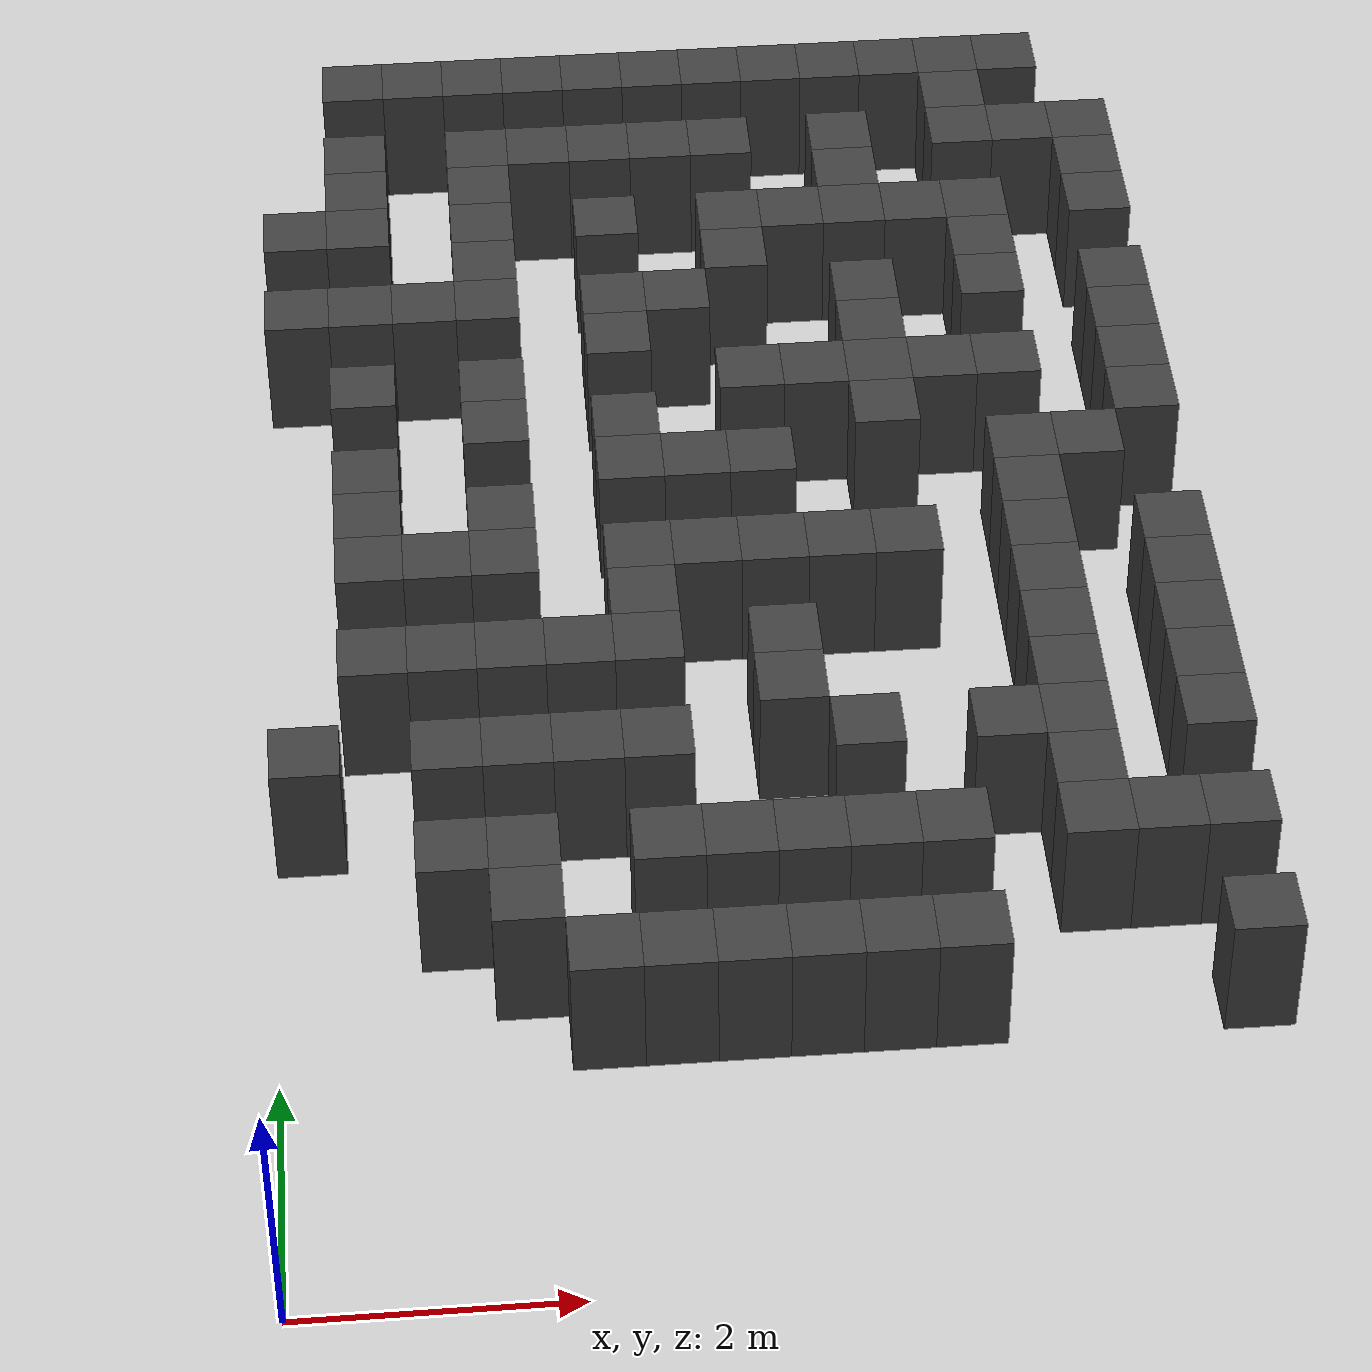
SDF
<sdf version="1.7">
 <world name="map_16668">
  <model name="ground_plane">
   <static>true</static>
   <link name="link">
    <collision name="collision">
     <geometry><plane><normal>0 0 1</normal><size>200 200</size></plane></geometry>
    </collision>
    <visual name="visual">
     <geometry><plane><normal>0 0 1</normal><size>200 200</size></plane></geometry>
     <material><ambient>0.8 0.8 0.8 1</ambient><diffuse>0.8 0.8 0.8 1</diffuse></material>
    </visual>
   </link>
  </model>
  <model name="maze_environment">
   <static>true</static>
   <link name="wall_26">
    <pose>0.750 12.250 0.500 0 0 0</pose>
    <collision name="col"><geometry><box><size>0.5 0.5 1.0</size></box></geometry></collision>
    <visual name="vis">
     <geometry><box><size>0.5 0.5 1.0</size></box></geometry>
     <material><ambient>0.15 0.15 0.15 1</ambient><diffuse>0.25 0.25 0.25 1</diffuse></material>
    </visual>
   </link>
   <link name="wall_27">
    <pose>1.250 12.250 0.500 0 0 0</pose>
    <collision name="col"><geometry><box><size>0.5 0.5 1.0</size></box></geometry></collision>
    <visual name="vis">
     <geometry><box><size>0.5 0.5 1.0</size></box></geometry>
     <material><ambient>0.15 0.15 0.15 1</ambient><diffuse>0.25 0.25 0.25 1</diffuse></material>
    </visual>
   </link>
   <link name="wall_28">
    <pose>1.750 12.250 0.500 0 0 0</pose>
    <collision name="col"><geometry><box><size>0.5 0.5 1.0</size></box></geometry></collision>
    <visual name="vis">
     <geometry><box><size>0.5 0.5 1.0</size></box></geometry>
     <material><ambient>0.15 0.15 0.15 1</ambient><diffuse>0.25 0.25 0.25 1</diffuse></material>
    </visual>
   </link>
   <link name="wall_29">
    <pose>2.250 12.250 0.500 0 0 0</pose>
    <collision name="col"><geometry><box><size>0.5 0.5 1.0</size></box></geometry></collision>
    <visual name="vis">
     <geometry><box><size>0.5 0.5 1.0</size></box></geometry>
     <material><ambient>0.15 0.15 0.15 1</ambient><diffuse>0.25 0.25 0.25 1</diffuse></material>
    </visual>
   </link>
   <link name="wall_30">
    <pose>2.750 12.250 0.500 0 0 0</pose>
    <collision name="col"><geometry><box><size>0.5 0.5 1.0</size></box></geometry></collision>
    <visual name="vis">
     <geometry><box><size>0.5 0.5 1.0</size></box></geometry>
     <material><ambient>0.15 0.15 0.15 1</ambient><diffuse>0.25 0.25 0.25 1</diffuse></material>
    </visual>
   </link>
   <link name="wall_31">
    <pose>3.250 12.250 0.500 0 0 0</pose>
    <collision name="col"><geometry><box><size>0.5 0.5 1.0</size></box></geometry></collision>
    <visual name="vis">
     <geometry><box><size>0.5 0.5 1.0</size></box></geometry>
     <material><ambient>0.15 0.15 0.15 1</ambient><diffuse>0.25 0.25 0.25 1</diffuse></material>
    </visual>
   </link>
   <link name="wall_32">
    <pose>3.750 12.250 0.500 0 0 0</pose>
    <collision name="col"><geometry><box><size>0.5 0.5 1.0</size></box></geometry></collision>
    <visual name="vis">
     <geometry><box><size>0.5 0.5 1.0</size></box></geometry>
     <material><ambient>0.15 0.15 0.15 1</ambient><diffuse>0.25 0.25 0.25 1</diffuse></material>
    </visual>
   </link>
   <link name="wall_33">
    <pose>4.250 12.250 0.500 0 0 0</pose>
    <collision name="col"><geometry><box><size>0.5 0.5 1.0</size></box></geometry></collision>
    <visual name="vis">
     <geometry><box><size>0.5 0.5 1.0</size></box></geometry>
     <material><ambient>0.15 0.15 0.15 1</ambient><diffuse>0.25 0.25 0.25 1</diffuse></material>
    </visual>
   </link>
   <link name="wall_34">
    <pose>4.750 12.250 0.500 0 0 0</pose>
    <collision name="col"><geometry><box><size>0.5 0.5 1.0</size></box></geometry></collision>
    <visual name="vis">
     <geometry><box><size>0.5 0.5 1.0</size></box></geometry>
     <material><ambient>0.15 0.15 0.15 1</ambient><diffuse>0.25 0.25 0.25 1</diffuse></material>
    </visual>
   </link>
   <link name="wall_35">
    <pose>5.250 12.250 0.500 0 0 0</pose>
    <collision name="col"><geometry><box><size>0.5 0.5 1.0</size></box></geometry></collision>
    <visual name="vis">
     <geometry><box><size>0.5 0.5 1.0</size></box></geometry>
     <material><ambient>0.15 0.15 0.15 1</ambient><diffuse>0.25 0.25 0.25 1</diffuse></material>
    </visual>
   </link>
   <link name="wall_36">
    <pose>5.750 12.250 0.500 0 0 0</pose>
    <collision name="col"><geometry><box><size>0.5 0.5 1.0</size></box></geometry></collision>
    <visual name="vis">
     <geometry><box><size>0.5 0.5 1.0</size></box></geometry>
     <material><ambient>0.15 0.15 0.15 1</ambient><diffuse>0.25 0.25 0.25 1</diffuse></material>
    </visual>
   </link>
   <link name="wall_37">
    <pose>6.250 12.250 0.500 0 0 0</pose>
    <collision name="col"><geometry><box><size>0.5 0.5 1.0</size></box></geometry></collision>
    <visual name="vis">
     <geometry><box><size>0.5 0.5 1.0</size></box></geometry>
     <material><ambient>0.15 0.15 0.15 1</ambient><diffuse>0.25 0.25 0.25 1</diffuse></material>
    </visual>
   </link>
   <link name="wall_54">
    <pose>5.750 11.750 0.500 0 0 0</pose>
    <collision name="col"><geometry><box><size>0.5 0.5 1.0</size></box></geometry></collision>
    <visual name="vis">
     <geometry><box><size>0.5 0.5 1.0</size></box></geometry>
     <material><ambient>0.15 0.15 0.15 1</ambient><diffuse>0.25 0.25 0.25 1</diffuse></material>
    </visual>
   </link>
   <link name="wall_76">
    <pose>0.750 11.250 0.500 0 0 0</pose>
    <collision name="col"><geometry><box><size>0.5 0.5 1.0</size></box></geometry></collision>
    <visual name="vis">
     <geometry><box><size>0.5 0.5 1.0</size></box></geometry>
     <material><ambient>0.15 0.15 0.15 1</ambient><diffuse>0.25 0.25 0.25 1</diffuse></material>
    </visual>
   </link>
   <link name="wall_77">
    <pose>1.750 11.250 0.500 0 0 0</pose>
    <collision name="col"><geometry><box><size>0.5 0.5 1.0</size></box></geometry></collision>
    <visual name="vis">
     <geometry><box><size>0.5 0.5 1.0</size></box></geometry>
     <material><ambient>0.15 0.15 0.15 1</ambient><diffuse>0.25 0.25 0.25 1</diffuse></material>
    </visual>
   </link>
   <link name="wall_78">
    <pose>2.250 11.250 0.500 0 0 0</pose>
    <collision name="col"><geometry><box><size>0.5 0.5 1.0</size></box></geometry></collision>
    <visual name="vis">
     <geometry><box><size>0.5 0.5 1.0</size></box></geometry>
     <material><ambient>0.15 0.15 0.15 1</ambient><diffuse>0.25 0.25 0.25 1</diffuse></material>
    </visual>
   </link>
   <link name="wall_79">
    <pose>2.750 11.250 0.500 0 0 0</pose>
    <collision name="col"><geometry><box><size>0.5 0.5 1.0</size></box></geometry></collision>
    <visual name="vis">
     <geometry><box><size>0.5 0.5 1.0</size></box></geometry>
     <material><ambient>0.15 0.15 0.15 1</ambient><diffuse>0.25 0.25 0.25 1</diffuse></material>
    </visual>
   </link>
   <link name="wall_80">
    <pose>3.250 11.250 0.500 0 0 0</pose>
    <collision name="col"><geometry><box><size>0.5 0.5 1.0</size></box></geometry></collision>
    <visual name="vis">
     <geometry><box><size>0.5 0.5 1.0</size></box></geometry>
     <material><ambient>0.15 0.15 0.15 1</ambient><diffuse>0.25 0.25 0.25 1</diffuse></material>
    </visual>
   </link>
   <link name="wall_81">
    <pose>3.750 11.250 0.500 0 0 0</pose>
    <collision name="col"><geometry><box><size>0.5 0.5 1.0</size></box></geometry></collision>
    <visual name="vis">
     <geometry><box><size>0.5 0.5 1.0</size></box></geometry>
     <material><ambient>0.15 0.15 0.15 1</ambient><diffuse>0.25 0.25 0.25 1</diffuse></material>
    </visual>
   </link>
   <link name="wall_82">
    <pose>4.750 11.250 0.500 0 0 0</pose>
    <collision name="col"><geometry><box><size>0.5 0.5 1.0</size></box></geometry></collision>
    <visual name="vis">
     <geometry><box><size>0.5 0.5 1.0</size></box></geometry>
     <material><ambient>0.15 0.15 0.15 1</ambient><diffuse>0.25 0.25 0.25 1</diffuse></material>
    </visual>
   </link>
   <link name="wall_83">
    <pose>5.750 11.250 0.500 0 0 0</pose>
    <collision name="col"><geometry><box><size>0.5 0.5 1.0</size></box></geometry></collision>
    <visual name="vis">
     <geometry><box><size>0.5 0.5 1.0</size></box></geometry>
     <material><ambient>0.15 0.15 0.15 1</ambient><diffuse>0.25 0.25 0.25 1</diffuse></material>
    </visual>
   </link>
   <link name="wall_84">
    <pose>6.250 11.250 0.500 0 0 0</pose>
    <collision name="col"><geometry><box><size>0.5 0.5 1.0</size></box></geometry></collision>
    <visual name="vis">
     <geometry><box><size>0.5 0.5 1.0</size></box></geometry>
     <material><ambient>0.15 0.15 0.15 1</ambient><diffuse>0.25 0.25 0.25 1</diffuse></material>
    </visual>
   </link>
   <link name="wall_85">
    <pose>6.750 11.250 0.500 0 0 0</pose>
    <collision name="col"><geometry><box><size>0.5 0.5 1.0</size></box></geometry></collision>
    <visual name="vis">
     <geometry><box><size>0.5 0.5 1.0</size></box></geometry>
     <material><ambient>0.15 0.15 0.15 1</ambient><diffuse>0.25 0.25 0.25 1</diffuse></material>
    </visual>
   </link>
   <link name="wall_100">
    <pose>0.750 10.750 0.500 0 0 0</pose>
    <collision name="col"><geometry><box><size>0.5 0.5 1.0</size></box></geometry></collision>
    <visual name="vis">
     <geometry><box><size>0.5 0.5 1.0</size></box></geometry>
     <material><ambient>0.15 0.15 0.15 1</ambient><diffuse>0.25 0.25 0.25 1</diffuse></material>
    </visual>
   </link>
   <link name="wall_101">
    <pose>1.750 10.750 0.500 0 0 0</pose>
    <collision name="col"><geometry><box><size>0.5 0.5 1.0</size></box></geometry></collision>
    <visual name="vis">
     <geometry><box><size>0.5 0.5 1.0</size></box></geometry>
     <material><ambient>0.15 0.15 0.15 1</ambient><diffuse>0.25 0.25 0.25 1</diffuse></material>
    </visual>
   </link>
   <link name="wall_102">
    <pose>4.750 10.750 0.500 0 0 0</pose>
    <collision name="col"><geometry><box><size>0.5 0.5 1.0</size></box></geometry></collision>
    <visual name="vis">
     <geometry><box><size>0.5 0.5 1.0</size></box></geometry>
     <material><ambient>0.15 0.15 0.15 1</ambient><diffuse>0.25 0.25 0.25 1</diffuse></material>
    </visual>
   </link>
   <link name="wall_103">
    <pose>6.750 10.750 0.500 0 0 0</pose>
    <collision name="col"><geometry><box><size>0.5 0.5 1.0</size></box></geometry></collision>
    <visual name="vis">
     <geometry><box><size>0.5 0.5 1.0</size></box></geometry>
     <material><ambient>0.15 0.15 0.15 1</ambient><diffuse>0.25 0.25 0.25 1</diffuse></material>
    </visual>
   </link>
   <link name="wall_125">
    <pose>0.250 10.250 0.500 0 0 0</pose>
    <collision name="col"><geometry><box><size>0.5 0.5 1.0</size></box></geometry></collision>
    <visual name="vis">
     <geometry><box><size>0.5 0.5 1.0</size></box></geometry>
     <material><ambient>0.15 0.15 0.15 1</ambient><diffuse>0.25 0.25 0.25 1</diffuse></material>
    </visual>
   </link>
   <link name="wall_126">
    <pose>0.750 10.250 0.500 0 0 0</pose>
    <collision name="col"><geometry><box><size>0.5 0.5 1.0</size></box></geometry></collision>
    <visual name="vis">
     <geometry><box><size>0.5 0.5 1.0</size></box></geometry>
     <material><ambient>0.15 0.15 0.15 1</ambient><diffuse>0.25 0.25 0.25 1</diffuse></material>
    </visual>
   </link>
   <link name="wall_127">
    <pose>1.750 10.250 0.500 0 0 0</pose>
    <collision name="col"><geometry><box><size>0.5 0.5 1.0</size></box></geometry></collision>
    <visual name="vis">
     <geometry><box><size>0.5 0.5 1.0</size></box></geometry>
     <material><ambient>0.15 0.15 0.15 1</ambient><diffuse>0.25 0.25 0.25 1</diffuse></material>
    </visual>
   </link>
   <link name="wall_128">
    <pose>2.750 10.250 0.500 0 0 0</pose>
    <collision name="col"><geometry><box><size>0.5 0.5 1.0</size></box></geometry></collision>
    <visual name="vis">
     <geometry><box><size>0.5 0.5 1.0</size></box></geometry>
     <material><ambient>0.15 0.15 0.15 1</ambient><diffuse>0.25 0.25 0.25 1</diffuse></material>
    </visual>
   </link>
   <link name="wall_129">
    <pose>3.750 10.250 0.500 0 0 0</pose>
    <collision name="col"><geometry><box><size>0.5 0.5 1.0</size></box></geometry></collision>
    <visual name="vis">
     <geometry><box><size>0.5 0.5 1.0</size></box></geometry>
     <material><ambient>0.15 0.15 0.15 1</ambient><diffuse>0.25 0.25 0.25 1</diffuse></material>
    </visual>
   </link>
   <link name="wall_130">
    <pose>4.250 10.250 0.500 0 0 0</pose>
    <collision name="col"><geometry><box><size>0.5 0.5 1.0</size></box></geometry></collision>
    <visual name="vis">
     <geometry><box><size>0.5 0.5 1.0</size></box></geometry>
     <material><ambient>0.15 0.15 0.15 1</ambient><diffuse>0.25 0.25 0.25 1</diffuse></material>
    </visual>
   </link>
   <link name="wall_131">
    <pose>4.750 10.250 0.500 0 0 0</pose>
    <collision name="col"><geometry><box><size>0.5 0.5 1.0</size></box></geometry></collision>
    <visual name="vis">
     <geometry><box><size>0.5 0.5 1.0</size></box></geometry>
     <material><ambient>0.15 0.15 0.15 1</ambient><diffuse>0.25 0.25 0.25 1</diffuse></material>
    </visual>
   </link>
   <link name="wall_132">
    <pose>5.250 10.250 0.500 0 0 0</pose>
    <collision name="col"><geometry><box><size>0.5 0.5 1.0</size></box></geometry></collision>
    <visual name="vis">
     <geometry><box><size>0.5 0.5 1.0</size></box></geometry>
     <material><ambient>0.15 0.15 0.15 1</ambient><diffuse>0.25 0.25 0.25 1</diffuse></material>
    </visual>
   </link>
   <link name="wall_133">
    <pose>5.750 10.250 0.500 0 0 0</pose>
    <collision name="col"><geometry><box><size>0.5 0.5 1.0</size></box></geometry></collision>
    <visual name="vis">
     <geometry><box><size>0.5 0.5 1.0</size></box></geometry>
     <material><ambient>0.15 0.15 0.15 1</ambient><diffuse>0.25 0.25 0.25 1</diffuse></material>
    </visual>
   </link>
   <link name="wall_134">
    <pose>6.750 10.250 0.500 0 0 0</pose>
    <collision name="col"><geometry><box><size>0.5 0.5 1.0</size></box></geometry></collision>
    <visual name="vis">
     <geometry><box><size>0.5 0.5 1.0</size></box></geometry>
     <material><ambient>0.15 0.15 0.15 1</ambient><diffuse>0.25 0.25 0.25 1</diffuse></material>
    </visual>
   </link>
   <link name="wall_148">
    <pose>1.750 9.750 0.500 0 0 0</pose>
    <collision name="col"><geometry><box><size>0.5 0.5 1.0</size></box></geometry></collision>
    <visual name="vis">
     <geometry><box><size>0.5 0.5 1.0</size></box></geometry>
     <material><ambient>0.15 0.15 0.15 1</ambient><diffuse>0.25 0.25 0.25 1</diffuse></material>
    </visual>
   </link>
   <link name="wall_149">
    <pose>3.750 9.750 0.500 0 0 0</pose>
    <collision name="col"><geometry><box><size>0.5 0.5 1.0</size></box></geometry></collision>
    <visual name="vis">
     <geometry><box><size>0.5 0.5 1.0</size></box></geometry>
     <material><ambient>0.15 0.15 0.15 1</ambient><diffuse>0.25 0.25 0.25 1</diffuse></material>
    </visual>
   </link>
   <link name="wall_150">
    <pose>5.750 9.750 0.500 0 0 0</pose>
    <collision name="col"><geometry><box><size>0.5 0.5 1.0</size></box></geometry></collision>
    <visual name="vis">
     <geometry><box><size>0.5 0.5 1.0</size></box></geometry>
     <material><ambient>0.15 0.15 0.15 1</ambient><diffuse>0.25 0.25 0.25 1</diffuse></material>
    </visual>
   </link>
   <link name="wall_172">
    <pose>0.250 9.250 0.500 0 0 0</pose>
    <collision name="col"><geometry><box><size>0.5 0.5 1.0</size></box></geometry></collision>
    <visual name="vis">
     <geometry><box><size>0.5 0.5 1.0</size></box></geometry>
     <material><ambient>0.15 0.15 0.15 1</ambient><diffuse>0.25 0.25 0.25 1</diffuse></material>
    </visual>
   </link>
   <link name="wall_173">
    <pose>0.750 9.250 0.500 0 0 0</pose>
    <collision name="col"><geometry><box><size>0.5 0.5 1.0</size></box></geometry></collision>
    <visual name="vis">
     <geometry><box><size>0.5 0.5 1.0</size></box></geometry>
     <material><ambient>0.15 0.15 0.15 1</ambient><diffuse>0.25 0.25 0.25 1</diffuse></material>
    </visual>
   </link>
   <link name="wall_174">
    <pose>1.250 9.250 0.500 0 0 0</pose>
    <collision name="col"><geometry><box><size>0.5 0.5 1.0</size></box></geometry></collision>
    <visual name="vis">
     <geometry><box><size>0.5 0.5 1.0</size></box></geometry>
     <material><ambient>0.15 0.15 0.15 1</ambient><diffuse>0.25 0.25 0.25 1</diffuse></material>
    </visual>
   </link>
   <link name="wall_175">
    <pose>1.750 9.250 0.500 0 0 0</pose>
    <collision name="col"><geometry><box><size>0.5 0.5 1.0</size></box></geometry></collision>
    <visual name="vis">
     <geometry><box><size>0.5 0.5 1.0</size></box></geometry>
     <material><ambient>0.15 0.15 0.15 1</ambient><diffuse>0.25 0.25 0.25 1</diffuse></material>
    </visual>
   </link>
   <link name="wall_176">
    <pose>2.750 9.250 0.500 0 0 0</pose>
    <collision name="col"><geometry><box><size>0.5 0.5 1.0</size></box></geometry></collision>
    <visual name="vis">
     <geometry><box><size>0.5 0.5 1.0</size></box></geometry>
     <material><ambient>0.15 0.15 0.15 1</ambient><diffuse>0.25 0.25 0.25 1</diffuse></material>
    </visual>
   </link>
   <link name="wall_177">
    <pose>3.250 9.250 0.500 0 0 0</pose>
    <collision name="col"><geometry><box><size>0.5 0.5 1.0</size></box></geometry></collision>
    <visual name="vis">
     <geometry><box><size>0.5 0.5 1.0</size></box></geometry>
     <material><ambient>0.15 0.15 0.15 1</ambient><diffuse>0.25 0.25 0.25 1</diffuse></material>
    </visual>
   </link>
   <link name="wall_178">
    <pose>4.750 9.250 0.500 0 0 0</pose>
    <collision name="col"><geometry><box><size>0.5 0.5 1.0</size></box></geometry></collision>
    <visual name="vis">
     <geometry><box><size>0.5 0.5 1.0</size></box></geometry>
     <material><ambient>0.15 0.15 0.15 1</ambient><diffuse>0.25 0.25 0.25 1</diffuse></material>
    </visual>
   </link>
   <link name="wall_179">
    <pose>5.750 9.250 0.500 0 0 0</pose>
    <collision name="col"><geometry><box><size>0.5 0.5 1.0</size></box></geometry></collision>
    <visual name="vis">
     <geometry><box><size>0.5 0.5 1.0</size></box></geometry>
     <material><ambient>0.15 0.15 0.15 1</ambient><diffuse>0.25 0.25 0.25 1</diffuse></material>
    </visual>
   </link>
   <link name="wall_180">
    <pose>6.750 9.250 0.500 0 0 0</pose>
    <collision name="col"><geometry><box><size>0.5 0.5 1.0</size></box></geometry></collision>
    <visual name="vis">
     <geometry><box><size>0.5 0.5 1.0</size></box></geometry>
     <material><ambient>0.15 0.15 0.15 1</ambient><diffuse>0.25 0.25 0.25 1</diffuse></material>
    </visual>
   </link>
   <link name="wall_196">
    <pose>2.750 8.750 0.500 0 0 0</pose>
    <collision name="col"><geometry><box><size>0.5 0.5 1.0</size></box></geometry></collision>
    <visual name="vis">
     <geometry><box><size>0.5 0.5 1.0</size></box></geometry>
     <material><ambient>0.15 0.15 0.15 1</ambient><diffuse>0.25 0.25 0.25 1</diffuse></material>
    </visual>
   </link>
   <link name="wall_197">
    <pose>4.750 8.750 0.500 0 0 0</pose>
    <collision name="col"><geometry><box><size>0.5 0.5 1.0</size></box></geometry></collision>
    <visual name="vis">
     <geometry><box><size>0.5 0.5 1.0</size></box></geometry>
     <material><ambient>0.15 0.15 0.15 1</ambient><diffuse>0.25 0.25 0.25 1</diffuse></material>
    </visual>
   </link>
   <link name="wall_198">
    <pose>6.750 8.750 0.500 0 0 0</pose>
    <collision name="col"><geometry><box><size>0.5 0.5 1.0</size></box></geometry></collision>
    <visual name="vis">
     <geometry><box><size>0.5 0.5 1.0</size></box></geometry>
     <material><ambient>0.15 0.15 0.15 1</ambient><diffuse>0.25 0.25 0.25 1</diffuse></material>
    </visual>
   </link>
   <link name="wall_217">
    <pose>0.750 8.250 0.500 0 0 0</pose>
    <collision name="col"><geometry><box><size>0.5 0.5 1.0</size></box></geometry></collision>
    <visual name="vis">
     <geometry><box><size>0.5 0.5 1.0</size></box></geometry>
     <material><ambient>0.15 0.15 0.15 1</ambient><diffuse>0.25 0.25 0.25 1</diffuse></material>
    </visual>
   </link>
   <link name="wall_218">
    <pose>1.750 8.250 0.500 0 0 0</pose>
    <collision name="col"><geometry><box><size>0.5 0.5 1.0</size></box></geometry></collision>
    <visual name="vis">
     <geometry><box><size>0.5 0.5 1.0</size></box></geometry>
     <material><ambient>0.15 0.15 0.15 1</ambient><diffuse>0.25 0.25 0.25 1</diffuse></material>
    </visual>
   </link>
   <link name="wall_219">
    <pose>3.750 8.250 0.500 0 0 0</pose>
    <collision name="col"><geometry><box><size>0.5 0.5 1.0</size></box></geometry></collision>
    <visual name="vis">
     <geometry><box><size>0.5 0.5 1.0</size></box></geometry>
     <material><ambient>0.15 0.15 0.15 1</ambient><diffuse>0.25 0.25 0.25 1</diffuse></material>
    </visual>
   </link>
   <link name="wall_220">
    <pose>4.250 8.250 0.500 0 0 0</pose>
    <collision name="col"><geometry><box><size>0.5 0.5 1.0</size></box></geometry></collision>
    <visual name="vis">
     <geometry><box><size>0.5 0.5 1.0</size></box></geometry>
     <material><ambient>0.15 0.15 0.15 1</ambient><diffuse>0.25 0.25 0.25 1</diffuse></material>
    </visual>
   </link>
   <link name="wall_221">
    <pose>4.750 8.250 0.500 0 0 0</pose>
    <collision name="col"><geometry><box><size>0.5 0.5 1.0</size></box></geometry></collision>
    <visual name="vis">
     <geometry><box><size>0.5 0.5 1.0</size></box></geometry>
     <material><ambient>0.15 0.15 0.15 1</ambient><diffuse>0.25 0.25 0.25 1</diffuse></material>
    </visual>
   </link>
   <link name="wall_222">
    <pose>5.250 8.250 0.500 0 0 0</pose>
    <collision name="col"><geometry><box><size>0.5 0.5 1.0</size></box></geometry></collision>
    <visual name="vis">
     <geometry><box><size>0.5 0.5 1.0</size></box></geometry>
     <material><ambient>0.15 0.15 0.15 1</ambient><diffuse>0.25 0.25 0.25 1</diffuse></material>
    </visual>
   </link>
   <link name="wall_223">
    <pose>5.750 8.250 0.500 0 0 0</pose>
    <collision name="col"><geometry><box><size>0.5 0.5 1.0</size></box></geometry></collision>
    <visual name="vis">
     <geometry><box><size>0.5 0.5 1.0</size></box></geometry>
     <material><ambient>0.15 0.15 0.15 1</ambient><diffuse>0.25 0.25 0.25 1</diffuse></material>
    </visual>
   </link>
   <link name="wall_224">
    <pose>6.750 8.250 0.500 0 0 0</pose>
    <collision name="col"><geometry><box><size>0.5 0.5 1.0</size></box></geometry></collision>
    <visual name="vis">
     <geometry><box><size>0.5 0.5 1.0</size></box></geometry>
     <material><ambient>0.15 0.15 0.15 1</ambient><diffuse>0.25 0.25 0.25 1</diffuse></material>
    </visual>
   </link>
   <link name="wall_243">
    <pose>1.750 7.750 0.500 0 0 0</pose>
    <collision name="col"><geometry><box><size>0.5 0.5 1.0</size></box></geometry></collision>
    <visual name="vis">
     <geometry><box><size>0.5 0.5 1.0</size></box></geometry>
     <material><ambient>0.15 0.15 0.15 1</ambient><diffuse>0.25 0.25 0.25 1</diffuse></material>
    </visual>
   </link>
   <link name="wall_244">
    <pose>2.750 7.750 0.500 0 0 0</pose>
    <collision name="col"><geometry><box><size>0.5 0.5 1.0</size></box></geometry></collision>
    <visual name="vis">
     <geometry><box><size>0.5 0.5 1.0</size></box></geometry>
     <material><ambient>0.15 0.15 0.15 1</ambient><diffuse>0.25 0.25 0.25 1</diffuse></material>
    </visual>
   </link>
   <link name="wall_245">
    <pose>4.750 7.750 0.500 0 0 0</pose>
    <collision name="col"><geometry><box><size>0.5 0.5 1.0</size></box></geometry></collision>
    <visual name="vis">
     <geometry><box><size>0.5 0.5 1.0</size></box></geometry>
     <material><ambient>0.15 0.15 0.15 1</ambient><diffuse>0.25 0.25 0.25 1</diffuse></material>
    </visual>
   </link>
   <link name="wall_246">
    <pose>6.750 7.750 0.500 0 0 0</pose>
    <collision name="col"><geometry><box><size>0.5 0.5 1.0</size></box></geometry></collision>
    <visual name="vis">
     <geometry><box><size>0.5 0.5 1.0</size></box></geometry>
     <material><ambient>0.15 0.15 0.15 1</ambient><diffuse>0.25 0.25 0.25 1</diffuse></material>
    </visual>
   </link>
   <link name="wall_268">
    <pose>0.750 7.250 0.500 0 0 0</pose>
    <collision name="col"><geometry><box><size>0.5 0.5 1.0</size></box></geometry></collision>
    <visual name="vis">
     <geometry><box><size>0.5 0.5 1.0</size></box></geometry>
     <material><ambient>0.15 0.15 0.15 1</ambient><diffuse>0.25 0.25 0.25 1</diffuse></material>
    </visual>
   </link>
   <link name="wall_269">
    <pose>2.750 7.250 0.500 0 0 0</pose>
    <collision name="col"><geometry><box><size>0.5 0.5 1.0</size></box></geometry></collision>
    <visual name="vis">
     <geometry><box><size>0.5 0.5 1.0</size></box></geometry>
     <material><ambient>0.15 0.15 0.15 1</ambient><diffuse>0.25 0.25 0.25 1</diffuse></material>
    </visual>
   </link>
   <link name="wall_270">
    <pose>3.250 7.250 0.500 0 0 0</pose>
    <collision name="col"><geometry><box><size>0.5 0.5 1.0</size></box></geometry></collision>
    <visual name="vis">
     <geometry><box><size>0.5 0.5 1.0</size></box></geometry>
     <material><ambient>0.15 0.15 0.15 1</ambient><diffuse>0.25 0.25 0.25 1</diffuse></material>
    </visual>
   </link>
   <link name="wall_271">
    <pose>3.750 7.250 0.500 0 0 0</pose>
    <collision name="col"><geometry><box><size>0.5 0.5 1.0</size></box></geometry></collision>
    <visual name="vis">
     <geometry><box><size>0.5 0.5 1.0</size></box></geometry>
     <material><ambient>0.15 0.15 0.15 1</ambient><diffuse>0.25 0.25 0.25 1</diffuse></material>
    </visual>
   </link>
   <link name="wall_272">
    <pose>5.750 7.250 0.500 0 0 0</pose>
    <collision name="col"><geometry><box><size>0.5 0.5 1.0</size></box></geometry></collision>
    <visual name="vis">
     <geometry><box><size>0.5 0.5 1.0</size></box></geometry>
     <material><ambient>0.15 0.15 0.15 1</ambient><diffuse>0.25 0.25 0.25 1</diffuse></material>
    </visual>
   </link>
   <link name="wall_273">
    <pose>6.250 7.250 0.500 0 0 0</pose>
    <collision name="col"><geometry><box><size>0.5 0.5 1.0</size></box></geometry></collision>
    <visual name="vis">
     <geometry><box><size>0.5 0.5 1.0</size></box></geometry>
     <material><ambient>0.15 0.15 0.15 1</ambient><diffuse>0.25 0.25 0.25 1</diffuse></material>
    </visual>
   </link>
   <link name="wall_290">
    <pose>0.750 6.750 0.500 0 0 0</pose>
    <collision name="col"><geometry><box><size>0.5 0.5 1.0</size></box></geometry></collision>
    <visual name="vis">
     <geometry><box><size>0.5 0.5 1.0</size></box></geometry>
     <material><ambient>0.15 0.15 0.15 1</ambient><diffuse>0.25 0.25 0.25 1</diffuse></material>
    </visual>
   </link>
   <link name="wall_291">
    <pose>1.750 6.750 0.500 0 0 0</pose>
    <collision name="col"><geometry><box><size>0.5 0.5 1.0</size></box></geometry></collision>
    <visual name="vis">
     <geometry><box><size>0.5 0.5 1.0</size></box></geometry>
     <material><ambient>0.15 0.15 0.15 1</ambient><diffuse>0.25 0.25 0.25 1</diffuse></material>
    </visual>
   </link>
   <link name="wall_292">
    <pose>5.750 6.750 0.500 0 0 0</pose>
    <collision name="col"><geometry><box><size>0.5 0.5 1.0</size></box></geometry></collision>
    <visual name="vis">
     <geometry><box><size>0.5 0.5 1.0</size></box></geometry>
     <material><ambient>0.15 0.15 0.15 1</ambient><diffuse>0.25 0.25 0.25 1</diffuse></material>
    </visual>
   </link>
   <link name="wall_312">
    <pose>0.750 6.250 0.500 0 0 0</pose>
    <collision name="col"><geometry><box><size>0.5 0.5 1.0</size></box></geometry></collision>
    <visual name="vis">
     <geometry><box><size>0.5 0.5 1.0</size></box></geometry>
     <material><ambient>0.15 0.15 0.15 1</ambient><diffuse>0.25 0.25 0.25 1</diffuse></material>
    </visual>
   </link>
   <link name="wall_313">
    <pose>1.250 6.250 0.500 0 0 0</pose>
    <collision name="col"><geometry><box><size>0.5 0.5 1.0</size></box></geometry></collision>
    <visual name="vis">
     <geometry><box><size>0.5 0.5 1.0</size></box></geometry>
     <material><ambient>0.15 0.15 0.15 1</ambient><diffuse>0.25 0.25 0.25 1</diffuse></material>
    </visual>
   </link>
   <link name="wall_314">
    <pose>1.750 6.250 0.500 0 0 0</pose>
    <collision name="col"><geometry><box><size>0.5 0.5 1.0</size></box></geometry></collision>
    <visual name="vis">
     <geometry><box><size>0.5 0.5 1.0</size></box></geometry>
     <material><ambient>0.15 0.15 0.15 1</ambient><diffuse>0.25 0.25 0.25 1</diffuse></material>
    </visual>
   </link>
   <link name="wall_315">
    <pose>2.750 6.250 0.500 0 0 0</pose>
    <collision name="col"><geometry><box><size>0.5 0.5 1.0</size></box></geometry></collision>
    <visual name="vis">
     <geometry><box><size>0.5 0.5 1.0</size></box></geometry>
     <material><ambient>0.15 0.15 0.15 1</ambient><diffuse>0.25 0.25 0.25 1</diffuse></material>
    </visual>
   </link>
   <link name="wall_316">
    <pose>3.250 6.250 0.500 0 0 0</pose>
    <collision name="col"><geometry><box><size>0.5 0.5 1.0</size></box></geometry></collision>
    <visual name="vis">
     <geometry><box><size>0.5 0.5 1.0</size></box></geometry>
     <material><ambient>0.15 0.15 0.15 1</ambient><diffuse>0.25 0.25 0.25 1</diffuse></material>
    </visual>
   </link>
   <link name="wall_317">
    <pose>3.750 6.250 0.500 0 0 0</pose>
    <collision name="col"><geometry><box><size>0.5 0.5 1.0</size></box></geometry></collision>
    <visual name="vis">
     <geometry><box><size>0.5 0.5 1.0</size></box></geometry>
     <material><ambient>0.15 0.15 0.15 1</ambient><diffuse>0.25 0.25 0.25 1</diffuse></material>
    </visual>
   </link>
   <link name="wall_318">
    <pose>4.250 6.250 0.500 0 0 0</pose>
    <collision name="col"><geometry><box><size>0.5 0.5 1.0</size></box></geometry></collision>
    <visual name="vis">
     <geometry><box><size>0.5 0.5 1.0</size></box></geometry>
     <material><ambient>0.15 0.15 0.15 1</ambient><diffuse>0.25 0.25 0.25 1</diffuse></material>
    </visual>
   </link>
   <link name="wall_319">
    <pose>4.750 6.250 0.500 0 0 0</pose>
    <collision name="col"><geometry><box><size>0.5 0.5 1.0</size></box></geometry></collision>
    <visual name="vis">
     <geometry><box><size>0.5 0.5 1.0</size></box></geometry>
     <material><ambient>0.15 0.15 0.15 1</ambient><diffuse>0.25 0.25 0.25 1</diffuse></material>
    </visual>
   </link>
   <link name="wall_320">
    <pose>5.750 6.250 0.500 0 0 0</pose>
    <collision name="col"><geometry><box><size>0.5 0.5 1.0</size></box></geometry></collision>
    <visual name="vis">
     <geometry><box><size>0.5 0.5 1.0</size></box></geometry>
     <material><ambient>0.15 0.15 0.15 1</ambient><diffuse>0.25 0.25 0.25 1</diffuse></material>
    </visual>
   </link>
   <link name="wall_321">
    <pose>6.750 6.250 0.500 0 0 0</pose>
    <collision name="col"><geometry><box><size>0.5 0.5 1.0</size></box></geometry></collision>
    <visual name="vis">
     <geometry><box><size>0.5 0.5 1.0</size></box></geometry>
     <material><ambient>0.15 0.15 0.15 1</ambient><diffuse>0.25 0.25 0.25 1</diffuse></material>
    </visual>
   </link>
   <link name="wall_338">
    <pose>2.750 5.750 0.500 0 0 0</pose>
    <collision name="col"><geometry><box><size>0.5 0.5 1.0</size></box></geometry></collision>
    <visual name="vis">
     <geometry><box><size>0.5 0.5 1.0</size></box></geometry>
     <material><ambient>0.15 0.15 0.15 1</ambient><diffuse>0.25 0.25 0.25 1</diffuse></material>
    </visual>
   </link>
   <link name="wall_339">
    <pose>5.750 5.750 0.500 0 0 0</pose>
    <collision name="col"><geometry><box><size>0.5 0.5 1.0</size></box></geometry></collision>
    <visual name="vis">
     <geometry><box><size>0.5 0.5 1.0</size></box></geometry>
     <material><ambient>0.15 0.15 0.15 1</ambient><diffuse>0.25 0.25 0.25 1</diffuse></material>
    </visual>
   </link>
   <link name="wall_340">
    <pose>6.750 5.750 0.500 0 0 0</pose>
    <collision name="col"><geometry><box><size>0.5 0.5 1.0</size></box></geometry></collision>
    <visual name="vis">
     <geometry><box><size>0.5 0.5 1.0</size></box></geometry>
     <material><ambient>0.15 0.15 0.15 1</ambient><diffuse>0.25 0.25 0.25 1</diffuse></material>
    </visual>
   </link>
   <link name="wall_358">
    <pose>0.750 5.250 0.500 0 0 0</pose>
    <collision name="col"><geometry><box><size>0.5 0.5 1.0</size></box></geometry></collision>
    <visual name="vis">
     <geometry><box><size>0.5 0.5 1.0</size></box></geometry>
     <material><ambient>0.15 0.15 0.15 1</ambient><diffuse>0.25 0.25 0.25 1</diffuse></material>
    </visual>
   </link>
   <link name="wall_359">
    <pose>1.250 5.250 0.500 0 0 0</pose>
    <collision name="col"><geometry><box><size>0.5 0.5 1.0</size></box></geometry></collision>
    <visual name="vis">
     <geometry><box><size>0.5 0.5 1.0</size></box></geometry>
     <material><ambient>0.15 0.15 0.15 1</ambient><diffuse>0.25 0.25 0.25 1</diffuse></material>
    </visual>
   </link>
   <link name="wall_360">
    <pose>1.750 5.250 0.500 0 0 0</pose>
    <collision name="col"><geometry><box><size>0.5 0.5 1.0</size></box></geometry></collision>
    <visual name="vis">
     <geometry><box><size>0.5 0.5 1.0</size></box></geometry>
     <material><ambient>0.15 0.15 0.15 1</ambient><diffuse>0.25 0.25 0.25 1</diffuse></material>
    </visual>
   </link>
   <link name="wall_361">
    <pose>2.250 5.250 0.500 0 0 0</pose>
    <collision name="col"><geometry><box><size>0.5 0.5 1.0</size></box></geometry></collision>
    <visual name="vis">
     <geometry><box><size>0.5 0.5 1.0</size></box></geometry>
     <material><ambient>0.15 0.15 0.15 1</ambient><diffuse>0.25 0.25 0.25 1</diffuse></material>
    </visual>
   </link>
   <link name="wall_362">
    <pose>2.750 5.250 0.500 0 0 0</pose>
    <collision name="col"><geometry><box><size>0.5 0.5 1.0</size></box></geometry></collision>
    <visual name="vis">
     <geometry><box><size>0.5 0.5 1.0</size></box></geometry>
     <material><ambient>0.15 0.15 0.15 1</ambient><diffuse>0.25 0.25 0.25 1</diffuse></material>
    </visual>
   </link>
   <link name="wall_363">
    <pose>3.750 5.250 0.500 0 0 0</pose>
    <collision name="col"><geometry><box><size>0.5 0.5 1.0</size></box></geometry></collision>
    <visual name="vis">
     <geometry><box><size>0.5 0.5 1.0</size></box></geometry>
     <material><ambient>0.15 0.15 0.15 1</ambient><diffuse>0.25 0.25 0.25 1</diffuse></material>
    </visual>
   </link>
   <link name="wall_364">
    <pose>5.750 5.250 0.500 0 0 0</pose>
    <collision name="col"><geometry><box><size>0.5 0.5 1.0</size></box></geometry></collision>
    <visual name="vis">
     <geometry><box><size>0.5 0.5 1.0</size></box></geometry>
     <material><ambient>0.15 0.15 0.15 1</ambient><diffuse>0.25 0.25 0.25 1</diffuse></material>
    </visual>
   </link>
   <link name="wall_365">
    <pose>6.750 5.250 0.500 0 0 0</pose>
    <collision name="col"><geometry><box><size>0.5 0.5 1.0</size></box></geometry></collision>
    <visual name="vis">
     <geometry><box><size>0.5 0.5 1.0</size></box></geometry>
     <material><ambient>0.15 0.15 0.15 1</ambient><diffuse>0.25 0.25 0.25 1</diffuse></material>
    </visual>
   </link>
   <link name="wall_383">
    <pose>3.750 4.750 0.500 0 0 0</pose>
    <collision name="col"><geometry><box><size>0.5 0.5 1.0</size></box></geometry></collision>
    <visual name="vis">
     <geometry><box><size>0.5 0.5 1.0</size></box></geometry>
     <material><ambient>0.15 0.15 0.15 1</ambient><diffuse>0.25 0.25 0.25 1</diffuse></material>
    </visual>
   </link>
   <link name="wall_384">
    <pose>5.750 4.750 0.500 0 0 0</pose>
    <collision name="col"><geometry><box><size>0.5 0.5 1.0</size></box></geometry></collision>
    <visual name="vis">
     <geometry><box><size>0.5 0.5 1.0</size></box></geometry>
     <material><ambient>0.15 0.15 0.15 1</ambient><diffuse>0.25 0.25 0.25 1</diffuse></material>
    </visual>
   </link>
   <link name="wall_385">
    <pose>6.750 4.750 0.500 0 0 0</pose>
    <collision name="col"><geometry><box><size>0.5 0.5 1.0</size></box></geometry></collision>
    <visual name="vis">
     <geometry><box><size>0.5 0.5 1.0</size></box></geometry>
     <material><ambient>0.15 0.15 0.15 1</ambient><diffuse>0.25 0.25 0.25 1</diffuse></material>
    </visual>
   </link>
   <link name="wall_405">
    <pose>0.250 4.250 0.500 0 0 0</pose>
    <collision name="col"><geometry><box><size>0.5 0.5 1.0</size></box></geometry></collision>
    <visual name="vis">
     <geometry><box><size>0.5 0.5 1.0</size></box></geometry>
     <material><ambient>0.15 0.15 0.15 1</ambient><diffuse>0.25 0.25 0.25 1</diffuse></material>
    </visual>
   </link>
   <link name="wall_406">
    <pose>1.250 4.250 0.500 0 0 0</pose>
    <collision name="col"><geometry><box><size>0.5 0.5 1.0</size></box></geometry></collision>
    <visual name="vis">
     <geometry><box><size>0.5 0.5 1.0</size></box></geometry>
     <material><ambient>0.15 0.15 0.15 1</ambient><diffuse>0.25 0.25 0.25 1</diffuse></material>
    </visual>
   </link>
   <link name="wall_407">
    <pose>1.750 4.250 0.500 0 0 0</pose>
    <collision name="col"><geometry><box><size>0.5 0.5 1.0</size></box></geometry></collision>
    <visual name="vis">
     <geometry><box><size>0.5 0.5 1.0</size></box></geometry>
     <material><ambient>0.15 0.15 0.15 1</ambient><diffuse>0.25 0.25 0.25 1</diffuse></material>
    </visual>
   </link>
   <link name="wall_408">
    <pose>2.250 4.250 0.500 0 0 0</pose>
    <collision name="col"><geometry><box><size>0.5 0.5 1.0</size></box></geometry></collision>
    <visual name="vis">
     <geometry><box><size>0.5 0.5 1.0</size></box></geometry>
     <material><ambient>0.15 0.15 0.15 1</ambient><diffuse>0.25 0.25 0.25 1</diffuse></material>
    </visual>
   </link>
   <link name="wall_409">
    <pose>2.750 4.250 0.500 0 0 0</pose>
    <collision name="col"><geometry><box><size>0.5 0.5 1.0</size></box></geometry></collision>
    <visual name="vis">
     <geometry><box><size>0.5 0.5 1.0</size></box></geometry>
     <material><ambient>0.15 0.15 0.15 1</ambient><diffuse>0.25 0.25 0.25 1</diffuse></material>
    </visual>
   </link>
   <link name="wall_410">
    <pose>4.250 4.250 0.500 0 0 0</pose>
    <collision name="col"><geometry><box><size>0.5 0.5 1.0</size></box></geometry></collision>
    <visual name="vis">
     <geometry><box><size>0.5 0.5 1.0</size></box></geometry>
     <material><ambient>0.15 0.15 0.15 1</ambient><diffuse>0.25 0.25 0.25 1</diffuse></material>
    </visual>
   </link>
   <link name="wall_411">
    <pose>5.250 4.250 0.500 0 0 0</pose>
    <collision name="col"><geometry><box><size>0.5 0.5 1.0</size></box></geometry></collision>
    <visual name="vis">
     <geometry><box><size>0.5 0.5 1.0</size></box></geometry>
     <material><ambient>0.15 0.15 0.15 1</ambient><diffuse>0.25 0.25 0.25 1</diffuse></material>
    </visual>
   </link>
   <link name="wall_412">
    <pose>5.750 4.250 0.500 0 0 0</pose>
    <collision name="col"><geometry><box><size>0.5 0.5 1.0</size></box></geometry></collision>
    <visual name="vis">
     <geometry><box><size>0.5 0.5 1.0</size></box></geometry>
     <material><ambient>0.15 0.15 0.15 1</ambient><diffuse>0.25 0.25 0.25 1</diffuse></material>
    </visual>
   </link>
   <link name="wall_413">
    <pose>6.750 4.250 0.500 0 0 0</pose>
    <collision name="col"><geometry><box><size>0.5 0.5 1.0</size></box></geometry></collision>
    <visual name="vis">
     <geometry><box><size>0.5 0.5 1.0</size></box></geometry>
     <material><ambient>0.15 0.15 0.15 1</ambient><diffuse>0.25 0.25 0.25 1</diffuse></material>
    </visual>
   </link>
   <link name="wall_428">
    <pose>5.750 3.750 0.500 0 0 0</pose>
    <collision name="col"><geometry><box><size>0.5 0.5 1.0</size></box></geometry></collision>
    <visual name="vis">
     <geometry><box><size>0.5 0.5 1.0</size></box></geometry>
     <material><ambient>0.15 0.15 0.15 1</ambient><diffuse>0.25 0.25 0.25 1</diffuse></material>
    </visual>
   </link>
   <link name="wall_450">
    <pose>1.250 3.250 0.500 0 0 0</pose>
    <collision name="col"><geometry><box><size>0.5 0.5 1.0</size></box></geometry></collision>
    <visual name="vis">
     <geometry><box><size>0.5 0.5 1.0</size></box></geometry>
     <material><ambient>0.15 0.15 0.15 1</ambient><diffuse>0.25 0.25 0.25 1</diffuse></material>
    </visual>
   </link>
   <link name="wall_451">
    <pose>1.750 3.250 0.500 0 0 0</pose>
    <collision name="col"><geometry><box><size>0.5 0.5 1.0</size></box></geometry></collision>
    <visual name="vis">
     <geometry><box><size>0.5 0.5 1.0</size></box></geometry>
     <material><ambient>0.15 0.15 0.15 1</ambient><diffuse>0.25 0.25 0.25 1</diffuse></material>
    </visual>
   </link>
   <link name="wall_452">
    <pose>2.750 3.250 0.500 0 0 0</pose>
    <collision name="col"><geometry><box><size>0.5 0.5 1.0</size></box></geometry></collision>
    <visual name="vis">
     <geometry><box><size>0.5 0.5 1.0</size></box></geometry>
     <material><ambient>0.15 0.15 0.15 1</ambient><diffuse>0.25 0.25 0.25 1</diffuse></material>
    </visual>
   </link>
   <link name="wall_453">
    <pose>3.250 3.250 0.500 0 0 0</pose>
    <collision name="col"><geometry><box><size>0.5 0.5 1.0</size></box></geometry></collision>
    <visual name="vis">
     <geometry><box><size>0.5 0.5 1.0</size></box></geometry>
     <material><ambient>0.15 0.15 0.15 1</ambient><diffuse>0.25 0.25 0.25 1</diffuse></material>
    </visual>
   </link>
   <link name="wall_454">
    <pose>3.750 3.250 0.500 0 0 0</pose>
    <collision name="col"><geometry><box><size>0.5 0.5 1.0</size></box></geometry></collision>
    <visual name="vis">
     <geometry><box><size>0.5 0.5 1.0</size></box></geometry>
     <material><ambient>0.15 0.15 0.15 1</ambient><diffuse>0.25 0.25 0.25 1</diffuse></material>
    </visual>
   </link>
   <link name="wall_455">
    <pose>4.250 3.250 0.500 0 0 0</pose>
    <collision name="col"><geometry><box><size>0.5 0.5 1.0</size></box></geometry></collision>
    <visual name="vis">
     <geometry><box><size>0.5 0.5 1.0</size></box></geometry>
     <material><ambient>0.15 0.15 0.15 1</ambient><diffuse>0.25 0.25 0.25 1</diffuse></material>
    </visual>
   </link>
   <link name="wall_456">
    <pose>4.750 3.250 0.500 0 0 0</pose>
    <collision name="col"><geometry><box><size>0.5 0.5 1.0</size></box></geometry></collision>
    <visual name="vis">
     <geometry><box><size>0.5 0.5 1.0</size></box></geometry>
     <material><ambient>0.15 0.15 0.15 1</ambient><diffuse>0.25 0.25 0.25 1</diffuse></material>
    </visual>
   </link>
   <link name="wall_457">
    <pose>5.750 3.250 0.500 0 0 0</pose>
    <collision name="col"><geometry><box><size>0.5 0.5 1.0</size></box></geometry></collision>
    <visual name="vis">
     <geometry><box><size>0.5 0.5 1.0</size></box></geometry>
     <material><ambient>0.15 0.15 0.15 1</ambient><diffuse>0.25 0.25 0.25 1</diffuse></material>
    </visual>
   </link>
   <link name="wall_458">
    <pose>6.250 3.250 0.500 0 0 0</pose>
    <collision name="col"><geometry><box><size>0.5 0.5 1.0</size></box></geometry></collision>
    <visual name="vis">
     <geometry><box><size>0.5 0.5 1.0</size></box></geometry>
     <material><ambient>0.15 0.15 0.15 1</ambient><diffuse>0.25 0.25 0.25 1</diffuse></material>
    </visual>
   </link>
   <link name="wall_459">
    <pose>6.750 3.250 0.500 0 0 0</pose>
    <collision name="col"><geometry><box><size>0.5 0.5 1.0</size></box></geometry></collision>
    <visual name="vis">
     <geometry><box><size>0.5 0.5 1.0</size></box></geometry>
     <material><ambient>0.15 0.15 0.15 1</ambient><diffuse>0.25 0.25 0.25 1</diffuse></material>
    </visual>
   </link>
   <link name="wall_474">
    <pose>1.750 2.750 0.500 0 0 0</pose>
    <collision name="col"><geometry><box><size>0.5 0.5 1.0</size></box></geometry></collision>
    <visual name="vis">
     <geometry><box><size>0.5 0.5 1.0</size></box></geometry>
     <material><ambient>0.15 0.15 0.15 1</ambient><diffuse>0.25 0.25 0.25 1</diffuse></material>
    </visual>
   </link>
   <link name="wall_501">
    <pose>2.250 2.250 0.500 0 0 0</pose>
    <collision name="col"><geometry><box><size>0.5 0.5 1.0</size></box></geometry></collision>
    <visual name="vis">
     <geometry><box><size>0.5 0.5 1.0</size></box></geometry>
     <material><ambient>0.15 0.15 0.15 1</ambient><diffuse>0.25 0.25 0.25 1</diffuse></material>
    </visual>
   </link>
   <link name="wall_502">
    <pose>2.750 2.250 0.500 0 0 0</pose>
    <collision name="col"><geometry><box><size>0.5 0.5 1.0</size></box></geometry></collision>
    <visual name="vis">
     <geometry><box><size>0.5 0.5 1.0</size></box></geometry>
     <material><ambient>0.15 0.15 0.15 1</ambient><diffuse>0.25 0.25 0.25 1</diffuse></material>
    </visual>
   </link>
   <link name="wall_503">
    <pose>3.250 2.250 0.500 0 0 0</pose>
    <collision name="col"><geometry><box><size>0.5 0.5 1.0</size></box></geometry></collision>
    <visual name="vis">
     <geometry><box><size>0.5 0.5 1.0</size></box></geometry>
     <material><ambient>0.15 0.15 0.15 1</ambient><diffuse>0.25 0.25 0.25 1</diffuse></material>
    </visual>
   </link>
   <link name="wall_504">
    <pose>3.750 2.250 0.500 0 0 0</pose>
    <collision name="col"><geometry><box><size>0.5 0.5 1.0</size></box></geometry></collision>
    <visual name="vis">
     <geometry><box><size>0.5 0.5 1.0</size></box></geometry>
     <material><ambient>0.15 0.15 0.15 1</ambient><diffuse>0.25 0.25 0.25 1</diffuse></material>
    </visual>
   </link>
   <link name="wall_505">
    <pose>4.250 2.250 0.500 0 0 0</pose>
    <collision name="col"><geometry><box><size>0.5 0.5 1.0</size></box></geometry></collision>
    <visual name="vis">
     <geometry><box><size>0.5 0.5 1.0</size></box></geometry>
     <material><ambient>0.15 0.15 0.15 1</ambient><diffuse>0.25 0.25 0.25 1</diffuse></material>
    </visual>
   </link>
   <link name="wall_506">
    <pose>4.750 2.250 0.500 0 0 0</pose>
    <collision name="col"><geometry><box><size>0.5 0.5 1.0</size></box></geometry></collision>
    <visual name="vis">
     <geometry><box><size>0.5 0.5 1.0</size></box></geometry>
     <material><ambient>0.15 0.15 0.15 1</ambient><diffuse>0.25 0.25 0.25 1</diffuse></material>
    </visual>
   </link>
   <link name="wall_507">
    <pose>6.750 2.250 0.500 0 0 0</pose>
    <collision name="col"><geometry><box><size>0.5 0.5 1.0</size></box></geometry></collision>
    <visual name="vis">
     <geometry><box><size>0.5 0.5 1.0</size></box></geometry>
     <material><ambient>0.15 0.15 0.15 1</ambient><diffuse>0.25 0.25 0.25 1</diffuse></material>
    </visual>
   </link>
  </model>
 </world>
</sdf>
